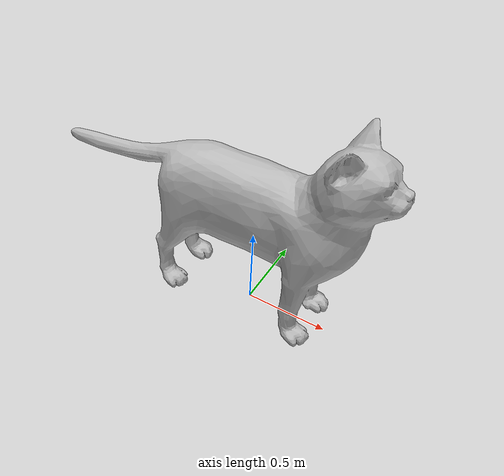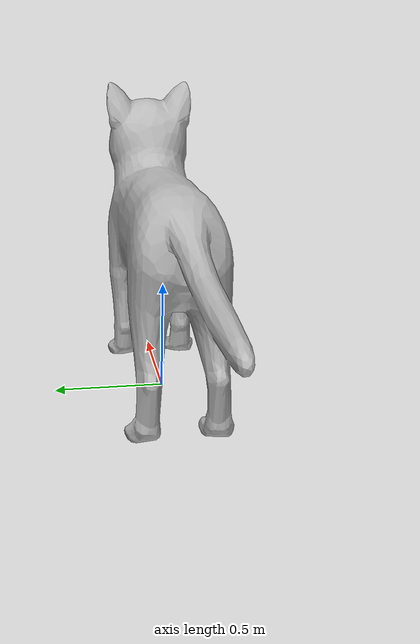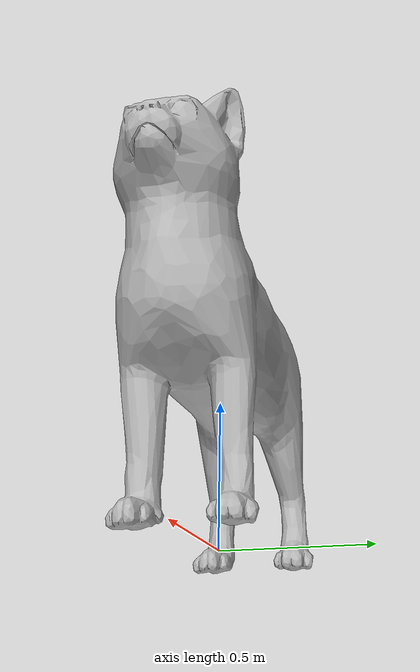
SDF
<?xml version="1.0" ?>
<sdf version="1.6">
  <model name="leopard">
    <static>true</static>
    <link name="body">
      <pose>0 0 0 0 0 0</pose>
      <visual name="visual">
        <geometry>
          <mesh>
            <uri>model://leopard/meshes/leopard.obj</uri>
            <!-- Cat mesh is ~0.34m tall at scale 1.0.
                 Scaling to 4.0 makes it ~1.36m — realistic large feline size -->
            <scale>4.0 4.0 4.0</scale>
          </mesh>
        </geometry>
        <material>
          <script>
            <uri>model://leopard/materials/scripts</uri>
            <uri>model://leopard/materials/textures</uri>
            <name>Animal/Leopard</name>
          </script>
        </material>
      </visual>
      <!-- Simplified collision bounding box for physics performance -->
      <collision name="collision">
        <pose>0 0 0.5 0 0 0</pose>
        <geometry>
          <box>
            <size>1.5 0.5 1.0</size>
          </box>
        </geometry>
      </collision>
    </link>
  </model>
</sdf>
